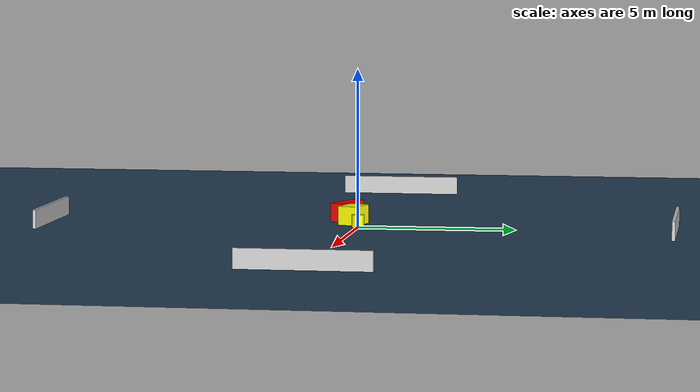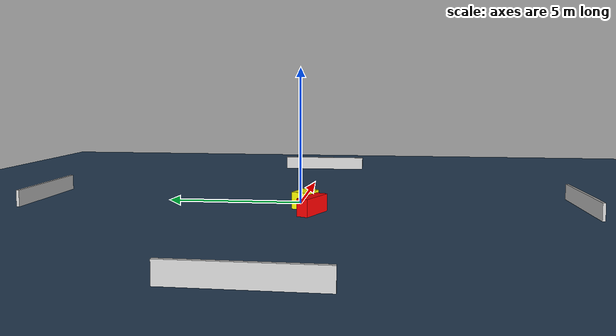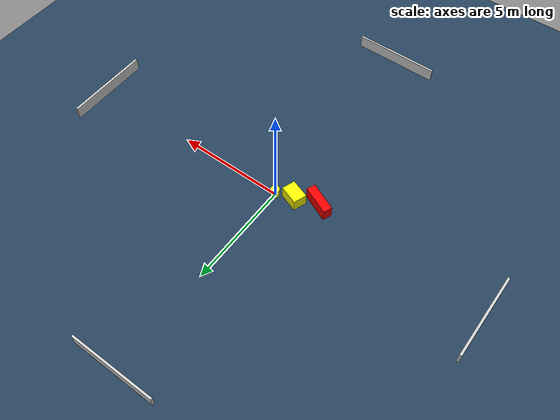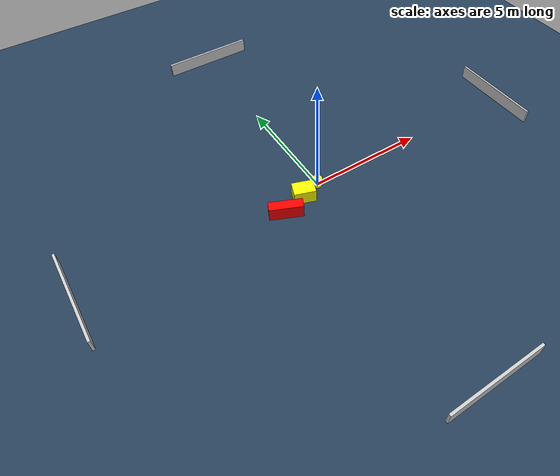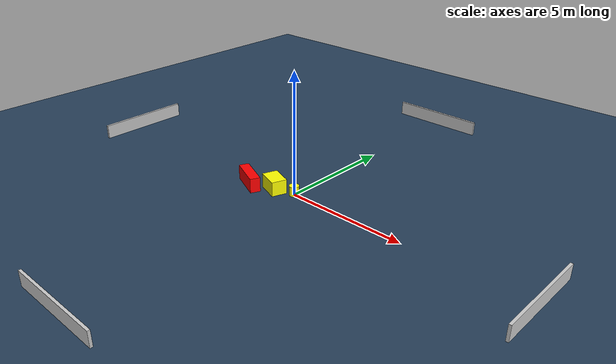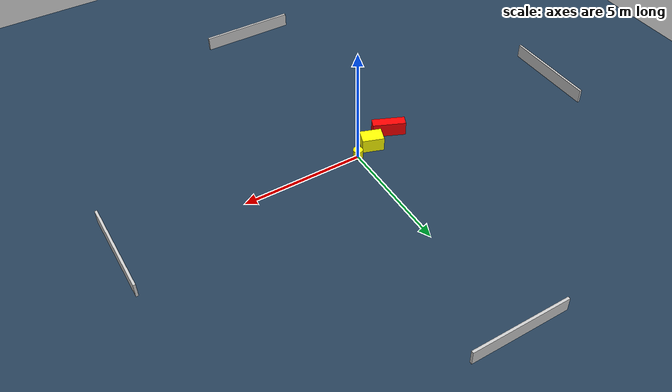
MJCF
<?xml version="1.0" ?>
<mujoco model="generated_environment">
  <option timestep="0.01" integrator="RK4" cone="elliptic"/>
  <default>
    <geom density="1"/>
  </default>
  <asset>
    <texture builtin="gradient" height="3072" name="skybox" rgb1="0.3 0.5 0.7" rgb2="0 0 0" type="skybox" width="512"/>
    <texture builtin="checker" height="300" name="groundplane" rgb1="0.2 0.3 0.4" rgb2="0.1 0.2 0.3" type="2d" width="300"/>
    <material name="groundplane" reflectance="0.2" texrepeat="5 5" texture="groundplane"/>
  </asset>
  <worldbody>
    <light dir="0 0 -1" directional="true" pos="0 0 1.5"/>
    <geom condim="3" friction="0.5 0.005 0.001" material="groundplane" name="floor" pos="0 0 0" size="0 0 0.05" type="plane"/>
    <body name="walls">
      <geom name="wall_1" condim="4" pos="-10.0 0.0 0.3" rgba="0.800000011920929 0.800000011920929 0.800000011920929 1.0" size="0.05 2.0 0.3" type="box"/>
      <geom name="wall_2" condim="4" pos="10.0 0.0 0.3" rgba="0.800000011920929 0.800000011920929 0.800000011920929 1.0" size="0.05 2.0 0.3" type="box"/>
      <geom name="wall_3" condim="4" pos="0.0 -10.0 0.3" rgba="0.800000011920929 0.800000011920929 0.800000011920929 1.0" size="2.0 0.05 0.3" type="box"/>
      <geom name="wall_4" condim="4" pos="0.0 10.0 0.3" rgba="0.800000011920929 0.800000011920929 0.800000011920929 1.0" size="2.0 0.05 0.3" type="box"/>
    </body>
    <body name="robot">
      <joint name="joint_x" type="slide" pos="0 0 0" axis="1 0 0"/>
      <joint name="joint_y" type="slide" pos="0 0 0" axis="0 1 0"/>
      <geom name="robot" type="cylinder" pos="0.0 0.0 0.2" size="0.2 0.2 0.0" mass="5.0" friction="1.0 0.005 0.0001" condim="4" rgba="1.0 1.0 0.0 1.0"/>
    </body>
    <body name="obstacle_1_movable">
      <geom name="obstacle_1_movable" condim="4" pos="-0.8192435161856259 -0.2601528345139538 0.3" euler="0 0 70.5488355661331" friction="0.0 0.005 0.001" rgba="1.0 1.0 0.0 1.0" size="0.31469182404387797 0.4454915810763057 0.3" type="box" mass="0.1"/>
      <joint type="free"/>
    </body>
    <body name="obstacle_2_static">
      <geom name="obstacle_2_static" condim="4" pos="-1.8651285878614086 -0.62311380800791 0.3" euler="0 0 246.14878383269624" friction="0.0 0.005 0.001" rgba="1.0 0.0 0.0 1.0" size="0.20683868859052157 0.684523054920551 0.3" type="box"/>
    </body>
  </worldbody>
  <actuator>
    <motor name="actuator_x" joint="joint_x" gear="1" ctrlrange="-1 1"/>
    <motor name="actuator_y" joint="joint_y" gear="1" ctrlrange="-1 1"/>
  </actuator>
</mujoco>
